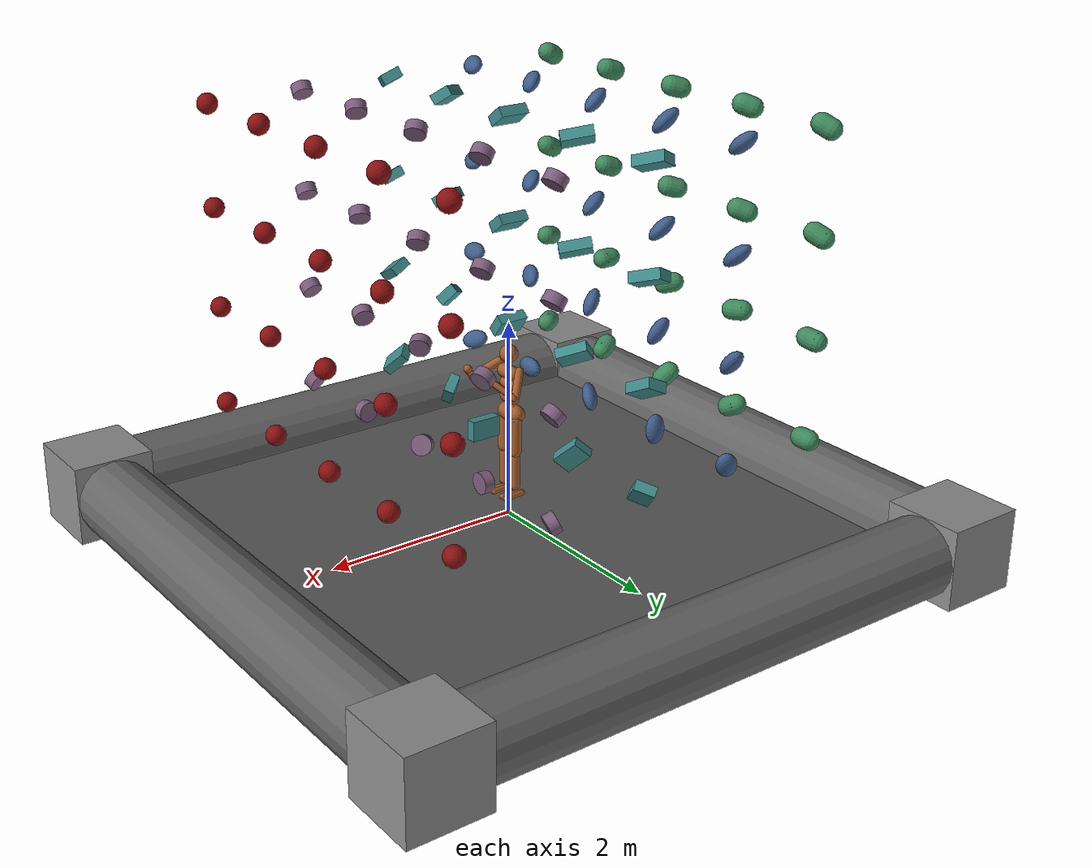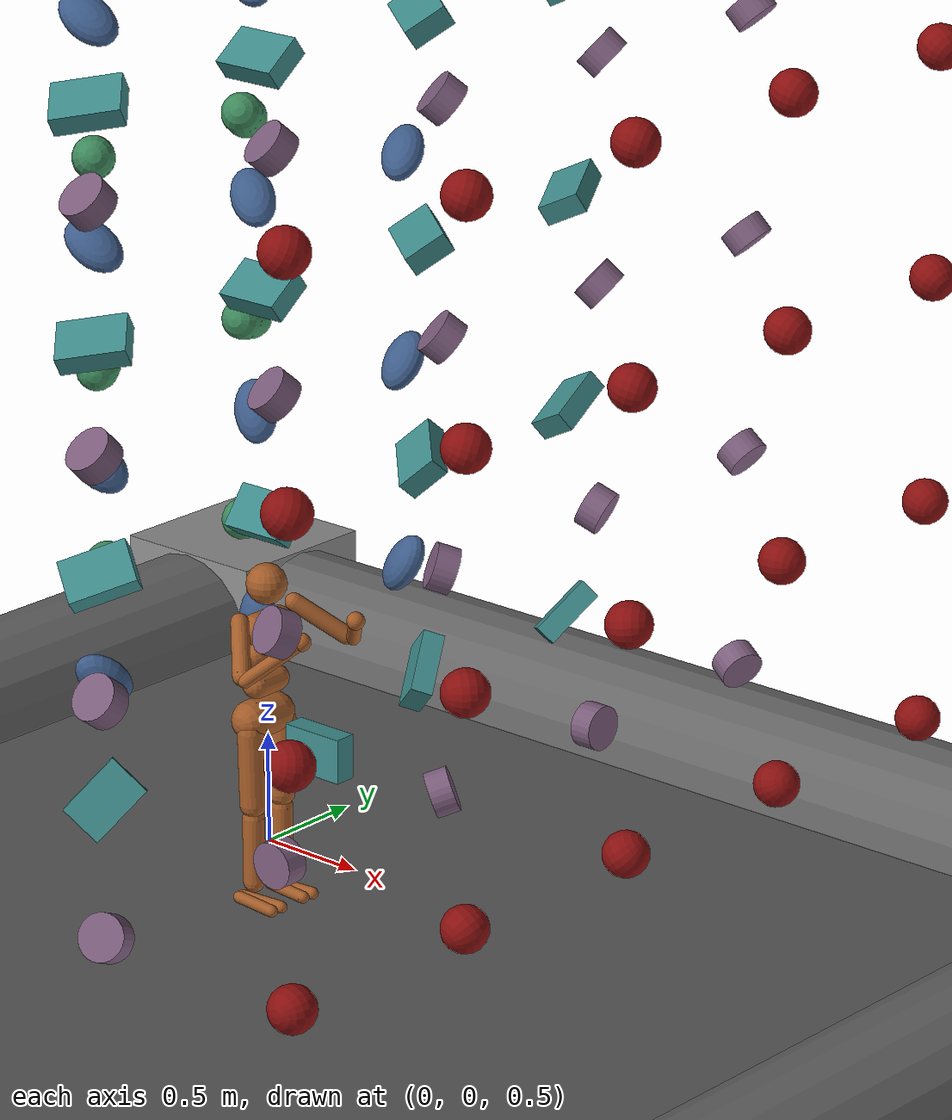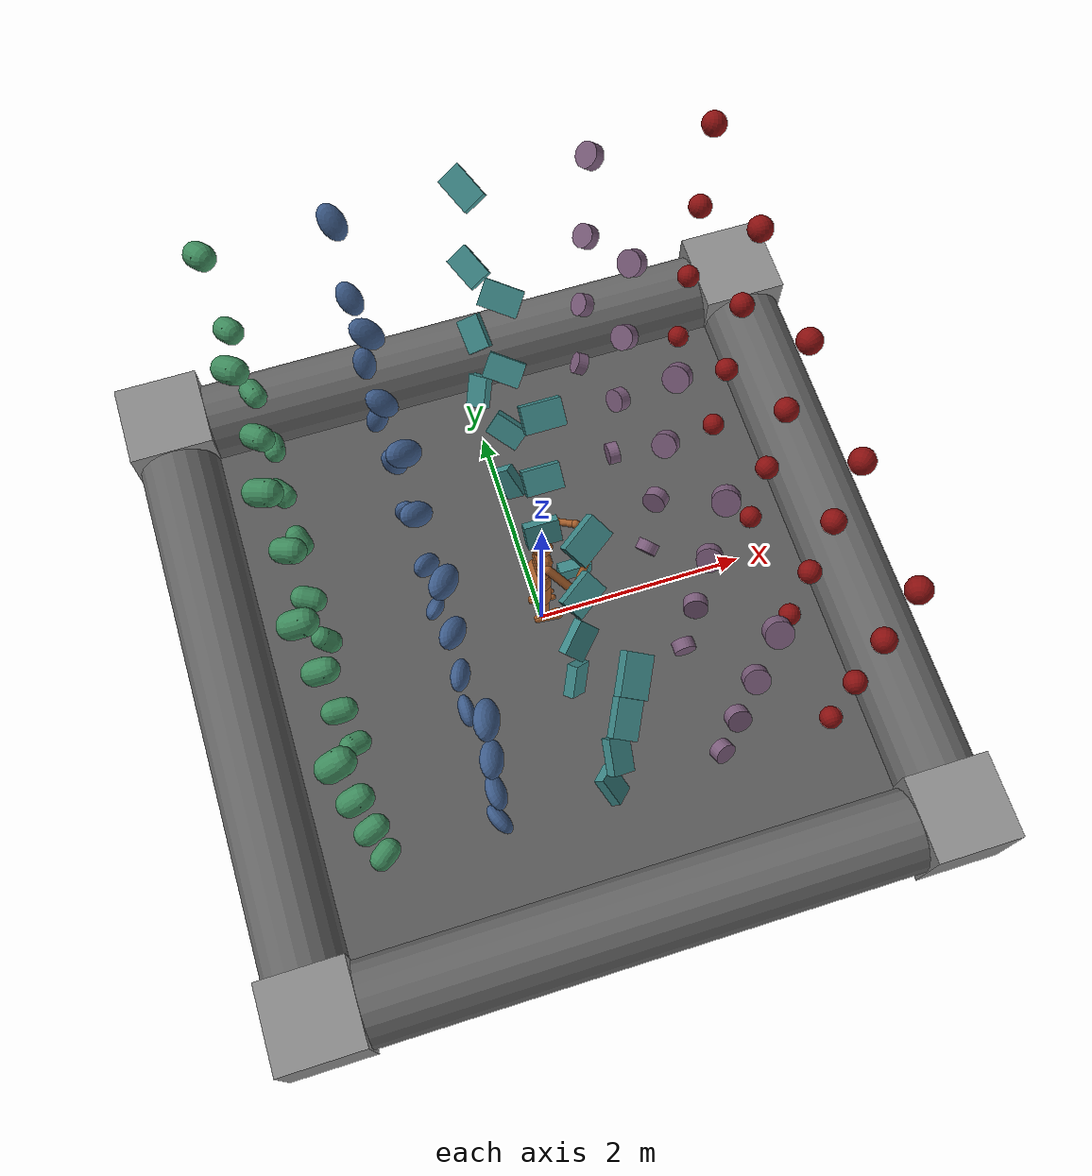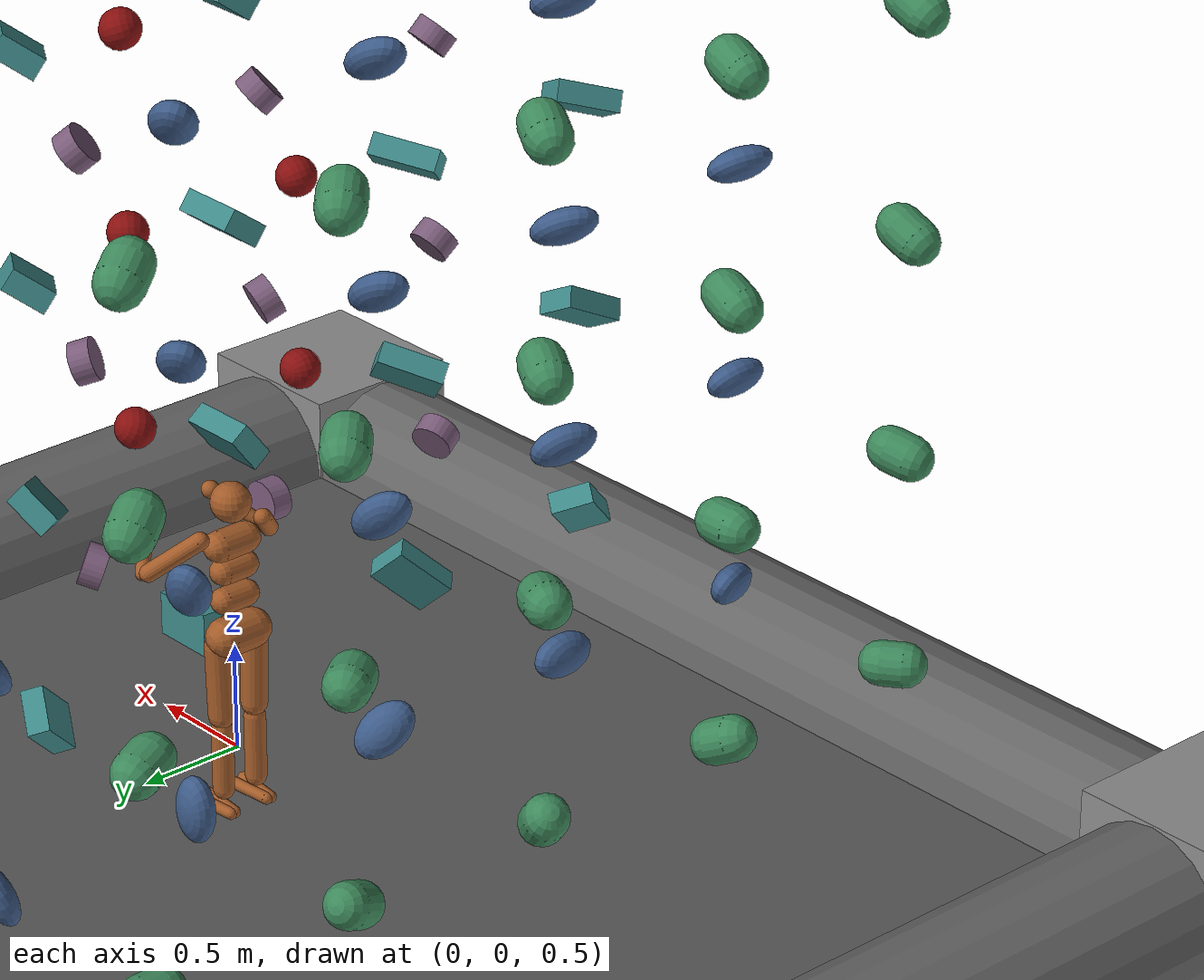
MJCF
<mujoco model="Humanoid and 100 objects">
  <!-- Degree of Freedom: 627
     Actuators: 21

     Humanoid and 100 free primitive objects.
-->
  <compiler angle="radian" autolimits="true"/>
  <option timestep="0.005"/>
  <size memory="100M"/>
  <visual>
    <global offwidth="800" offheight="800"/>
    <quality offsamples="8"/>
    <map force="0.05" znear="0.1" zfar="30"/>
    <rgba haze="0.15 0.25 0.35 1"/>
  </visual>
  <statistic extent="4"/>
  <default class="main">
    <geom solimp="0.9 0.9 0.01 0.5 2"/>
    <general ctrllimited="true" ctrlrange="-1 1"/>
    <default class="body">
      <joint limited="true" solimplimit="0 0.99 0.01 0.5 2" stiffness="1" armature="0.01" damping="0.2"/>
      <geom type="capsule" condim="1" friction="0.7 0.005 0.0001" solref="0.015 1" solimp="0.9 0.99 0.003 0.5 2" material="body"/>
      <default class="big_joint">
        <joint stiffness="10" damping="5"/>
        <default class="big_stiff_joint">
          <joint stiffness="20"/>
        </default>
      </default>
    </default>
    <default class="object1">
      <geom size="0.1 0.05 0" type="capsule" material="object1"/>
    </default>
    <default class="object2">
      <geom size="0.15 0.1 0.07" type="ellipsoid" material="object2"/>
    </default>
    <default class="object3">
      <geom size="0.15 0.1 0.05" type="box" material="object3"/>
    </default>
    <default class="object4">
      <geom size="0.1 0.05 0" type="cylinder" condim="4" friction="1 0.01 0.01" material="object4"/>
    </default>
    <default class="object5">
      <geom size="0.1 0 0" material="object5"/>
    </default>
    <default class="border">
      <geom size="0.4 0 0" type="capsule" rgba="0.4 0.4 0.4 1"/>
    </default>
    <default class="borderpost">
      <geom size="0.41 0.41 0.41" type="box" rgba="0.55 0.55 0.55 1"/>
    </default>
  </default>
  <asset>
    <texture type="skybox" builtin="gradient" rgb1="0.3 0.5 0.7" rgb2="0 0 0" width="512" height="3072"/>
    <texture type="cube" name="body" builtin="flat" mark="cross" rgb1="0.8 0.6 0.4" rgb2="0.8 0.6 0.4" markrgb="1 1 1" width="128" height="768"/>
    <texture type="2d" name="grid" builtin="checker" rgb1="0.1 0.2 0.3" rgb2="0.2 0.3 0.4" width="512" height="512"/>
    <texture type="skybox" builtin="gradient" rgb1="0.4 0.6 0.8" rgb2="0 0 0" width="512" height="3072"/>
    <texture type="cube" name="texgeom" builtin="flat" mark="cross" rgb1="0.6 0.6 0.6" rgb2="0.6 0.6 0.6" markrgb="1 1 1" width="128" height="768"/>
    <texture type="2d" name="texplane" builtin="checker" rgb1="0.4 0.4 0.4" rgb2="0.6 0.6 0.6" width="512" height="512"/>
    <material name="body" texture="body" texuniform="true" rgba="0.8 0.6 0.4 1"/>
    <material name="grid" texture="grid" texuniform="true" reflectance="0.2"/>
    <material name="MatPlane" texture="texplane" texuniform="true" reflectance="0.3" rgba="0.7 0.7 0.7 1"/>
    <material name="object1" texture="texgeom" texuniform="true" rgba="0.4 0.9 0.6 1"/>
    <material name="object2" texture="texgeom" texuniform="true" rgba="0.4 0.6 0.9 1"/>
    <material name="object3" texture="texgeom" texuniform="true" rgba="0.4 0.9 0.9 1"/>
    <material name="object4" texture="texgeom" texuniform="true" rgba="0.8 0.6 0.8 1"/>
    <material name="object5" texture="texgeom" texuniform="true" rgba="0.9 0.1 0.1 1"/>
  </asset>
  <worldbody>
    <geom name="floor" size="3 3 0.5" type="plane" material="MatPlane"/>
    <geom class="border" size="0.4 3" pos="0 3 0" quat="0.707107 0 -0.707107 0"/>
    <geom class="border" size="0.4 3" pos="0 -3 0" quat="0.707107 0 -0.707107 0"/>
    <geom class="border" size="0.4 3" pos="3 0 0" quat="0.707107 -0.707107 0 0"/>
    <geom class="border" size="0.4 3" pos="-3 0 0" quat="0.707107 -0.707107 0 0"/>
    <geom class="borderpost" pos="3 3 0"/>
    <geom class="borderpost" pos="-3 3 0"/>
    <geom class="borderpost" pos="3 -3 0"/>
    <geom class="borderpost" pos="-3 -3 0"/>
    <light pos="0 0 10" dir="0 0.1 -1" directional="true" diffuse="1 1 1"/>
    <body name="torso" childclass="body" pos="0 0 1.5">
      <joint name="root" limited="false" type="free" solimplimit="0.9 0.95 0.001 0.5 2" stiffness="0" armature="0" damping="0"/>
      <geom name="torso" size="0.07 0.07" quat="0.707107 0.707107 0 0"/>
      <geom name="upper_waist" size="0.06 0.06" pos="-0.01 0 -0.12" quat="0.707107 0.707107 0 0"/>
      <camera name="back" pos="-3 0 1" quat="0.601501 0.371748 -0.371748 -0.601501" mode="trackcom"/>
      <camera name="side" pos="0 -3 1" quat="0.850651 0.525731 0 0" mode="trackcom"/>
      <light name="top" pos="0 0 2" dir="0 0 -1" mode="trackcom"/>
      <body name="head" pos="0 0 0.19">
        <geom name="head" size="0.09" type="sphere"/>
        <camera name="egocentric" pos="0.09 0 0" quat="0.524286 0.474472 -0.474472 -0.524286" fovy="80"/>
      </body>
      <body name="lower_waist" pos="-0.01 0 -0.26">
        <joint name="abdomen_z" class="big_stiff_joint" pos="0 0 0.065" axis="0 0 1" range="-0.785398 0.785398"/>
        <joint name="abdomen_y" class="big_joint" pos="0 0 0.065" axis="0 1 0" range="-1.309 0.523599"/>
        <geom name="lower_waist" size="0.06 0.06" quat="0.707107 0.707107 0 0"/>
        <body name="pelvis" pos="0 0 -0.165">
          <joint name="abdomen_x" class="big_joint" pos="0 0 0.1" axis="1 0 0" range="-0.610865 0.610865"/>
          <geom name="butt" size="0.09 0.07" pos="-0.02 0 0" quat="0.707107 0.707107 0 0"/>
          <body name="right_thigh" pos="0 -0.1 -0.04">
            <joint name="right_hip_x" class="big_joint" pos="0 0 0" axis="1 0 0" range="-0.436332 0.0872665"/>
            <joint name="right_hip_z" class="big_joint" pos="0 0 0" axis="0 0 1" range="-1.0472 0.610865"/>
            <joint name="right_hip_y" class="big_stiff_joint" pos="0 0 0" axis="0 1 0" range="-1.91986 0.349066"/>
            <geom name="right_thigh" size="0.06 0.170074" pos="0 0.005 -0.17" quat="0.999892 0.0147011 0 0"/>
            <body name="right_shin" pos="0 0.01 -0.403">
              <joint name="right_knee" pos="0 0 0.02" axis="0 -1 0" range="-2.79253 0.0349066"/>
              <geom name="right_shin" size="0.049 0.15" pos="0 0 -0.15"/>
              <body name="right_foot" pos="0 0 -0.39">
                <joint name="right_ankle_y" pos="0 0 0.08" axis="0 1 0" stiffness="6" range="-0.872665 0.872665"/>
                <joint name="right_ankle_x" pos="0 0 0.04" axis="0.894427 0 0.447214" stiffness="3" range="-0.872665 0.872665"/>
                <geom name="right_right_foot" size="0.027 0.105475" pos="0.035 -0.03 0" quat="0.707107 -0.0670402 -0.703922 0"/>
                <geom name="left_right_foot" size="0.027 0.105475" pos="0.035 0.01 0" quat="0.707107 0.0670402 -0.703922 0"/>
              </body>
            </body>
          </body>
          <body name="left_thigh" pos="0 0.1 -0.04">
            <joint name="left_hip_x" class="big_joint" pos="0 0 0" axis="-1 0 0" range="-0.436332 0.0872665"/>
            <joint name="left_hip_z" class="big_joint" pos="0 0 0" axis="0 0 -1" range="-1.0472 0.610865"/>
            <joint name="left_hip_y" class="big_stiff_joint" pos="0 0 0" axis="0 1 0" range="-1.91986 0.349066"/>
            <geom name="left_thigh" size="0.06 0.170074" pos="0 -0.005 -0.17" quat="0.999892 -0.0147011 0 0"/>
            <body name="left_shin" pos="0 -0.01 -0.403">
              <joint name="left_knee" pos="0 0 0.02" axis="0 -1 0" range="-2.79253 0.0349066"/>
              <geom name="left_shin" size="0.049 0.15" pos="0 0 -0.15"/>
              <body name="left_foot" pos="0 0 -0.39">
                <joint name="left_ankle_y" pos="0 0 0.08" axis="0 1 0" stiffness="6" range="-0.872665 0.872665"/>
                <joint name="left_ankle_x" pos="0 0 0.04" axis="0.894427 0 0.447214" stiffness="3" range="-0.872665 0.872665"/>
                <geom name="left_left_foot" size="0.027 0.105475" pos="0.035 0.03 0" quat="0.707107 0.0670402 -0.703922 0"/>
                <geom name="right_left_foot" size="0.027 0.105475" pos="0.035 -0.01 0" quat="0.707107 -0.0670402 -0.703922 0"/>
              </body>
            </body>
          </body>
        </body>
      </body>
      <body name="right_upper_arm" pos="0 -0.17 0.06">
        <joint name="right_shoulder1" pos="0 0 0" axis="0.816497 0.408248 0.408248" range="-1.48353 1.0472"/>
        <joint name="right_shoulder2" pos="0 0 0" axis="0 -0.707107 0.707107" range="-1.48353 1.0472"/>
        <geom name="right_upper_arm" size="0.04 0.138564" pos="0.08 -0.08 -0.08" quat="0.888074 -0.325058 -0.325058 0"/>
        <body name="right_lower_arm" pos="0.18 -0.18 -0.18">
          <joint name="right_elbow" pos="0 0 0" axis="0 -0.707107 0.707107" stiffness="0" range="-1.5708 0.872665"/>
          <geom name="right_lower_arm" size="0.031 0.138564" pos="0.09 0.09 0.09" quat="0.459701 0.627963 -0.627963 0"/>
          <body name="right_hand" pos="0.18 0.18 0.18">
            <geom name="right_hand" size="0.04" quat="0.888074 -0.325058 0.325058 0" type="sphere"/>
          </body>
        </body>
      </body>
      <body name="left_upper_arm" pos="0 0.17 0.06">
        <joint name="left_shoulder1" pos="0 0 0" axis="0.816497 -0.408248 0.408248" range="-1.0472 1.48353"/>
        <joint name="left_shoulder2" pos="0 0 0" axis="0 0.707107 0.707107" range="-1.0472 1.48353"/>
        <geom name="left_upper_arm" size="0.04 0.138564" pos="0.08 0.08 -0.08" quat="0.888074 0.325058 -0.325058 0"/>
        <body name="left_lower_arm" pos="0.18 0.18 -0.18">
          <joint name="left_elbow" pos="0 0 0" axis="0 -0.707107 -0.707107" stiffness="0" range="-1.5708 0.872665"/>
          <geom name="left_lower_arm" size="0.031 0.138564" pos="0.09 -0.09 0.09" quat="0.459701 -0.627963 -0.627963 0"/>
          <body name="left_hand" pos="0.18 -0.18 0.18">
            <geom name="left_hand" size="0.04" quat="0.888074 0.325058 0.325058 0" type="sphere"/>
          </body>
        </body>
      </body>
    </body>
    <body pos="-2 -2 1" quat="-0.632456 -0.632456 0.316228 0.316228">
      <joint type="free"/>
      <geom class="object1"/>
    </body>
    <body pos="-2 -2 2" quat="-0.5547 -0.5547 0.5547 0.27735">
      <joint type="free"/>
      <geom class="object1"/>
    </body>
    <body pos="-2 -2 3" quat="-0.471405 -0.471405 0.707107 0.235702">
      <joint type="free"/>
      <geom class="object1"/>
    </body>
    <body pos="-2 -2 4" quat="-0.471405 -0.471405 0.707107 0.235702">
      <joint type="free"/>
      <geom class="object1"/>
    </body>
    <body pos="-2 -1 1" quat="-0.755929 -0.377964 0.377964 0.377964">
      <joint type="free"/>
      <geom class="object1"/>
    </body>
    <body pos="-2 -1 2" quat="-0.632456 -0.316228 0.632456 0.316228">
      <joint type="free"/>
      <geom class="object1"/>
    </body>
    <body pos="-2 -1 3" quat="-0.516398 -0.258199 0.774597 0.258199">
      <joint type="free"/>
      <geom class="object1"/>
    </body>
    <body pos="-2 -1 4" quat="-0.516398 -0.258199 0.774597 0.258199">
      <joint type="free"/>
      <geom class="object1"/>
    </body>
    <body pos="-2 0 1" quat="-0.816497 0 0.408248 0.408248">
      <joint type="free"/>
      <geom class="object1"/>
    </body>
    <body pos="-2 0 2" quat="-0.666667 0 0.666667 0.333333">
      <joint type="free"/>
      <geom class="object1"/>
    </body>
    <body pos="-2 0 3" quat="-0.534522 0 0.801784 0.267261">
      <joint type="free"/>
      <geom class="object1"/>
    </body>
    <body pos="-2 0 4" quat="-0.534522 0 0.801784 0.267261">
      <joint type="free"/>
      <geom class="object1"/>
    </body>
    <body pos="-2 1 1" quat="-0.755929 0.377964 0.377964 0.377964">
      <joint type="free"/>
      <geom class="object1"/>
    </body>
    <body pos="-2 1 2" quat="-0.632456 0.316228 0.632456 0.316228">
      <joint type="free"/>
      <geom class="object1"/>
    </body>
    <body pos="-2 1 3" quat="-0.516398 0.258199 0.774597 0.258199">
      <joint type="free"/>
      <geom class="object1"/>
    </body>
    <body pos="-2 1 4" quat="-0.516398 0.258199 0.774597 0.258199">
      <joint type="free"/>
      <geom class="object1"/>
    </body>
    <body pos="-2 2 1" quat="-0.632456 0.632456 0.316228 0.316228">
      <joint type="free"/>
      <geom class="object1"/>
    </body>
    <body pos="-2 2 2" quat="-0.5547 0.5547 0.5547 0.27735">
      <joint type="free"/>
      <geom class="object1"/>
    </body>
    <body pos="-2 2 3" quat="-0.471405 0.471405 0.707107 0.235702">
      <joint type="free"/>
      <geom class="object1"/>
    </body>
    <body pos="-2 2 4" quat="-0.471405 0.471405 0.707107 0.235702">
      <joint type="free"/>
      <geom class="object1"/>
    </body>
    <body pos="-1 -2 1" quat="-0.377964 -0.755929 0.377964 0.377964">
      <joint type="free"/>
      <geom class="object2"/>
    </body>
    <body pos="-1 -2 2" quat="-0.316228 -0.632456 0.632456 0.316228">
      <joint type="free"/>
      <geom class="object2"/>
    </body>
    <body pos="-1 -2 3" quat="-0.258199 -0.516398 0.774597 0.258199">
      <joint type="free"/>
      <geom class="object2"/>
    </body>
    <body pos="-1 -2 4" quat="-0.258199 -0.516398 0.774597 0.258199">
      <joint type="free"/>
      <geom class="object2"/>
    </body>
    <body pos="-1 -1 1" quat="-0.5 -0.5 0.5 0.5">
      <joint type="free"/>
      <geom class="object2"/>
    </body>
    <body pos="-1 -1 2" quat="-0.377964 -0.377964 0.755929 0.377964">
      <joint type="free"/>
      <geom class="object2"/>
    </body>
    <body pos="-1 -1 3" quat="-0.288675 -0.288675 0.866025 0.288675">
      <joint type="free"/>
      <geom class="object2"/>
    </body>
    <body pos="-1 -1 4" quat="-0.288675 -0.288675 0.866025 0.288675">
      <joint type="free"/>
      <geom class="object2"/>
    </body>
    <body pos="-1 0 1" quat="-0.57735 0 0.57735 0.57735">
      <joint type="free"/>
      <geom class="object2"/>
    </body>
    <body pos="-1 0 2" quat="-0.408248 0 0.816497 0.408248">
      <joint type="free"/>
      <geom class="object2"/>
    </body>
    <body pos="-1 0 3" quat="-0.301511 0 0.904534 0.301511">
      <joint type="free"/>
      <geom class="object2"/>
    </body>
    <body pos="-1 0 4" quat="-0.301511 0 0.904534 0.301511">
      <joint type="free"/>
      <geom class="object2"/>
    </body>
    <body pos="-1 1 1" quat="-0.5 0.5 0.5 0.5">
      <joint type="free"/>
      <geom class="object2"/>
    </body>
    <body pos="-1 1 2" quat="-0.377964 0.377964 0.755929 0.377964">
      <joint type="free"/>
      <geom class="object2"/>
    </body>
    <body pos="-1 1 3" quat="-0.288675 0.288675 0.866025 0.288675">
      <joint type="free"/>
      <geom class="object2"/>
    </body>
    <body pos="-1 1 4" quat="-0.288675 0.288675 0.866025 0.288675">
      <joint type="free"/>
      <geom class="object2"/>
    </body>
    <body pos="-1 2 1" quat="-0.377964 0.755929 0.377964 0.377964">
      <joint type="free"/>
      <geom class="object2"/>
    </body>
    <body pos="-1 2 2" quat="-0.316228 0.632456 0.632456 0.316228">
      <joint type="free"/>
      <geom class="object2"/>
    </body>
    <body pos="-1 2 3" quat="-0.258199 0.516398 0.774597 0.258199">
      <joint type="free"/>
      <geom class="object2"/>
    </body>
    <body pos="-1 2 4" quat="-0.258199 0.516398 0.774597 0.258199">
      <joint type="free"/>
      <geom class="object2"/>
    </body>
    <body pos="0 -2 1" quat="0 -0.816497 0.408248 0.408248">
      <joint type="free"/>
      <geom class="object3"/>
    </body>
    <body pos="0 -2 2" quat="0 -0.666667 0.666667 0.333333">
      <joint type="free"/>
      <geom class="object3"/>
    </body>
    <body pos="0 -2 3" quat="0 -0.534522 0.801784 0.267261">
      <joint type="free"/>
      <geom class="object3"/>
    </body>
    <body pos="0 -2 4" quat="0 -0.534522 0.801784 0.267261">
      <joint type="free"/>
      <geom class="object3"/>
    </body>
    <body pos="0 -1 1" quat="0 -0.57735 0.57735 0.57735">
      <joint type="free"/>
      <geom class="object3"/>
    </body>
    <body pos="0 -1 2" quat="0 -0.408248 0.816497 0.408248">
      <joint type="free"/>
      <geom class="object3"/>
    </body>
    <body pos="0 -1 3" quat="0 -0.301511 0.904534 0.301511">
      <joint type="free"/>
      <geom class="object3"/>
    </body>
    <body pos="0 -1 4" quat="0 -0.301511 0.904534 0.301511">
      <joint type="free"/>
      <geom class="object3"/>
    </body>
    <body pos="0.3 0 1" quat="0 0 0.707107 0.707107">
      <joint type="free"/>
      <geom class="object3"/>
    </body>
    <body pos="0 0 2" quat="0 0 0.894427 0.447214">
      <joint type="free"/>
      <geom class="object3"/>
    </body>
    <body pos="0 0 3" quat="0 0 0.948683 0.316228">
      <joint type="free"/>
      <geom class="object3"/>
    </body>
    <body pos="0 0 4" quat="0 0 0.948683 0.316228">
      <joint type="free"/>
      <geom class="object3"/>
    </body>
    <body pos="0 1 1" quat="0 0.57735 0.57735 0.57735">
      <joint type="free"/>
      <geom class="object3"/>
    </body>
    <body pos="0 1 2" quat="0 0.408248 0.816497 0.408248">
      <joint type="free"/>
      <geom class="object3"/>
    </body>
    <body pos="0 1 3" quat="0 0.301511 0.904534 0.301511">
      <joint type="free"/>
      <geom class="object3"/>
    </body>
    <body pos="0 1 4" quat="0 0.301511 0.904534 0.301511">
      <joint type="free"/>
      <geom class="object3"/>
    </body>
    <body pos="0 2 1" quat="0 0.816497 0.408248 0.408248">
      <joint type="free"/>
      <geom class="object3"/>
    </body>
    <body pos="0 2 2" quat="0 0.666667 0.666667 0.333333">
      <joint type="free"/>
      <geom class="object3"/>
    </body>
    <body pos="0 2 3" quat="0 0.534522 0.801784 0.267261">
      <joint type="free"/>
      <geom class="object3"/>
    </body>
    <body pos="0 2 4" quat="0 0.534522 0.801784 0.267261">
      <joint type="free"/>
      <geom class="object3"/>
    </body>
    <body pos="1 -2 1" quat="0.377964 -0.755929 0.377964 0.377964">
      <joint type="free"/>
      <geom class="object4"/>
    </body>
    <body pos="1 -2 2" quat="0.316228 -0.632456 0.632456 0.316228">
      <joint type="free"/>
      <geom class="object4"/>
    </body>
    <body pos="1 -2 3" quat="0.258199 -0.516398 0.774597 0.258199">
      <joint type="free"/>
      <geom class="object4"/>
    </body>
    <body pos="1 -2 4" quat="0.258199 -0.516398 0.774597 0.258199">
      <joint type="free"/>
      <geom class="object4"/>
    </body>
    <body pos="1 -1 1" quat="0.5 -0.5 0.5 0.5">
      <joint type="free"/>
      <geom class="object4"/>
    </body>
    <body pos="1 -1 2" quat="0.377964 -0.377964 0.755929 0.377964">
      <joint type="free"/>
      <geom class="object4"/>
    </body>
    <body pos="1 -1 3" quat="0.288675 -0.288675 0.866025 0.288675">
      <joint type="free"/>
      <geom class="object4"/>
    </body>
    <body pos="1 -1 4" quat="0.288675 -0.288675 0.866025 0.288675">
      <joint type="free"/>
      <geom class="object4"/>
    </body>
    <body pos="1 0 1" quat="0.57735 0 0.57735 0.57735">
      <joint type="free"/>
      <geom class="object4"/>
    </body>
    <body pos="1 0 2" quat="0.408248 0 0.816497 0.408248">
      <joint type="free"/>
      <geom class="object4"/>
    </body>
    <body pos="1 0 3" quat="0.301511 0 0.904534 0.301511">
      <joint type="free"/>
      <geom class="object4"/>
    </body>
    <body pos="1 0 4" quat="0.301511 0 0.904534 0.301511">
      <joint type="free"/>
      <geom class="object4"/>
    </body>
    <body pos="1 1 1" quat="0.5 0.5 0.5 0.5">
      <joint type="free"/>
      <geom class="object4"/>
    </body>
    <body pos="1 1 2" quat="0.377964 0.377964 0.755929 0.377964">
      <joint type="free"/>
      <geom class="object4"/>
    </body>
    <body pos="1 1 3" quat="0.288675 0.288675 0.866025 0.288675">
      <joint type="free"/>
      <geom class="object4"/>
    </body>
    <body pos="1 1 4" quat="0.288675 0.288675 0.866025 0.288675">
      <joint type="free"/>
      <geom class="object4"/>
    </body>
    <body pos="1 2 1" quat="0.377964 0.755929 0.377964 0.377964">
      <joint type="free"/>
      <geom class="object4"/>
    </body>
    <body pos="1 2 2" quat="0.316228 0.632456 0.632456 0.316228">
      <joint type="free"/>
      <geom class="object4"/>
    </body>
    <body pos="1 2 3" quat="0.258199 0.516398 0.774597 0.258199">
      <joint type="free"/>
      <geom class="object4"/>
    </body>
    <body pos="1 2 4" quat="0.258199 0.516398 0.774597 0.258199">
      <joint type="free"/>
      <geom class="object4"/>
    </body>
    <body pos="2 -2 1" quat="0.632456 -0.632456 0.316228 0.316228">
      <joint type="free"/>
      <geom class="object5"/>
    </body>
    <body pos="2 -2 2" quat="0.5547 -0.5547 0.5547 0.27735">
      <joint type="free"/>
      <geom class="object5"/>
    </body>
    <body pos="2 -2 3" quat="0.471405 -0.471405 0.707107 0.235702">
      <joint type="free"/>
      <geom class="object5"/>
    </body>
    <body pos="2 -2 4" quat="0.471405 -0.471405 0.707107 0.235702">
      <joint type="free"/>
      <geom class="object5"/>
    </body>
    <body pos="2 -1 1" quat="0.755929 -0.377964 0.377964 0.377964">
      <joint type="free"/>
      <geom class="object5"/>
    </body>
    <body pos="2 -1 2" quat="0.632456 -0.316228 0.632456 0.316228">
      <joint type="free"/>
      <geom class="object5"/>
    </body>
    <body pos="2 -1 3" quat="0.516398 -0.258199 0.774597 0.258199">
      <joint type="free"/>
      <geom class="object5"/>
    </body>
    <body pos="2 -1 4" quat="0.516398 -0.258199 0.774597 0.258199">
      <joint type="free"/>
      <geom class="object5"/>
    </body>
    <body pos="2 0 1" quat="0.816497 0 0.408248 0.408248">
      <joint type="free"/>
      <geom class="object5"/>
    </body>
    <body pos="2 0 2" quat="0.666667 0 0.666667 0.333333">
      <joint type="free"/>
      <geom class="object5"/>
    </body>
    <body pos="2 0 3" quat="0.534522 0 0.801784 0.267261">
      <joint type="free"/>
      <geom class="object5"/>
    </body>
    <body pos="2 0 4" quat="0.534522 0 0.801784 0.267261">
      <joint type="free"/>
      <geom class="object5"/>
    </body>
    <body pos="2 1 1" quat="0.755929 0.377964 0.377964 0.377964">
      <joint type="free"/>
      <geom class="object5"/>
    </body>
    <body pos="2 1 2" quat="0.632456 0.316228 0.632456 0.316228">
      <joint type="free"/>
      <geom class="object5"/>
    </body>
    <body pos="2 1 3" quat="0.516398 0.258199 0.774597 0.258199">
      <joint type="free"/>
      <geom class="object5"/>
    </body>
    <body pos="2 1 4" quat="0.516398 0.258199 0.774597 0.258199">
      <joint type="free"/>
      <geom class="object5"/>
    </body>
    <body pos="2 2 1" quat="0.632456 0.632456 0.316228 0.316228">
      <joint type="free"/>
      <geom class="object5"/>
    </body>
    <body pos="2 2 2" quat="0.5547 0.5547 0.5547 0.27735">
      <joint type="free"/>
      <geom class="object5"/>
    </body>
    <body pos="2 2 3" quat="0.471405 0.471405 0.707107 0.235702">
      <joint type="free"/>
      <geom class="object5"/>
    </body>
    <body pos="2 2 4" quat="0.471405 0.471405 0.707107 0.235702">
      <joint type="free"/>
      <geom class="object5"/>
    </body>
  </worldbody>
  <actuator>
    <general name="abdomen_y" joint="abdomen_y" gear="40 0 0 0 0 0"/>
    <general name="abdomen_z" joint="abdomen_z" gear="40 0 0 0 0 0"/>
    <general name="abdomen_x" joint="abdomen_x" gear="40 0 0 0 0 0"/>
    <general name="right_hip_x" joint="right_hip_x" gear="40 0 0 0 0 0"/>
    <general name="right_hip_z" joint="right_hip_z" gear="40 0 0 0 0 0"/>
    <general name="right_hip_y" joint="right_hip_y" gear="120 0 0 0 0 0"/>
    <general name="right_knee" joint="right_knee" gear="80 0 0 0 0 0"/>
    <general name="right_ankle_x" joint="right_ankle_x" gear="20 0 0 0 0 0"/>
    <general name="right_ankle_y" joint="right_ankle_y" gear="20 0 0 0 0 0"/>
    <general name="left_hip_x" joint="left_hip_x" gear="40 0 0 0 0 0"/>
    <general name="left_hip_z" joint="left_hip_z" gear="40 0 0 0 0 0"/>
    <general name="left_hip_y" joint="left_hip_y" gear="120 0 0 0 0 0"/>
    <general name="left_knee" joint="left_knee" gear="80 0 0 0 0 0"/>
    <general name="left_ankle_x" joint="left_ankle_x" gear="20 0 0 0 0 0"/>
    <general name="left_ankle_y" joint="left_ankle_y" gear="20 0 0 0 0 0"/>
    <general name="right_shoulder1" joint="right_shoulder1" gear="20 0 0 0 0 0"/>
    <general name="right_shoulder2" joint="right_shoulder2" gear="20 0 0 0 0 0"/>
    <general name="right_elbow" joint="right_elbow" gear="40 0 0 0 0 0"/>
    <general name="left_shoulder1" joint="left_shoulder1" gear="20 0 0 0 0 0"/>
    <general name="left_shoulder2" joint="left_shoulder2" gear="20 0 0 0 0 0"/>
    <general name="left_elbow" joint="left_elbow" gear="40 0 0 0 0 0"/>
  </actuator>
</mujoco>
